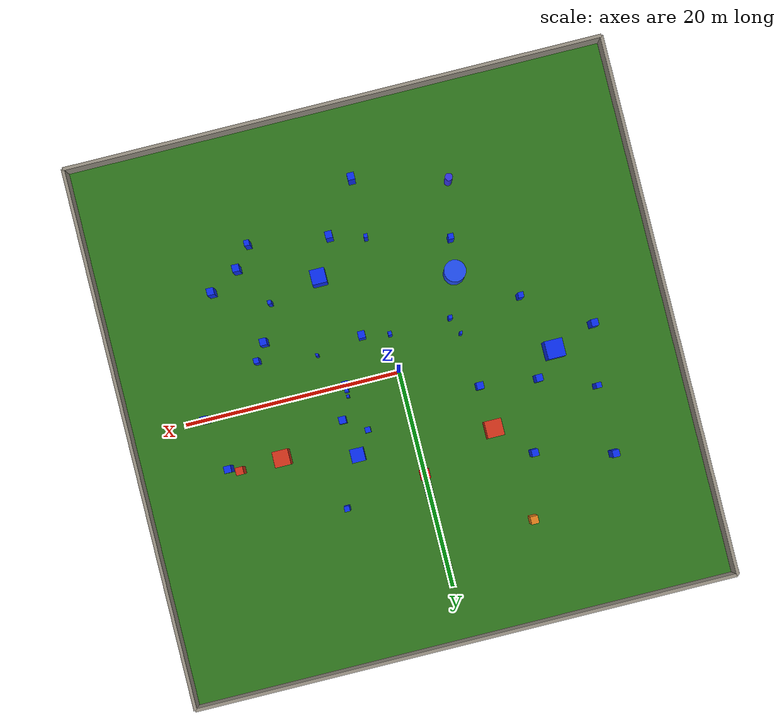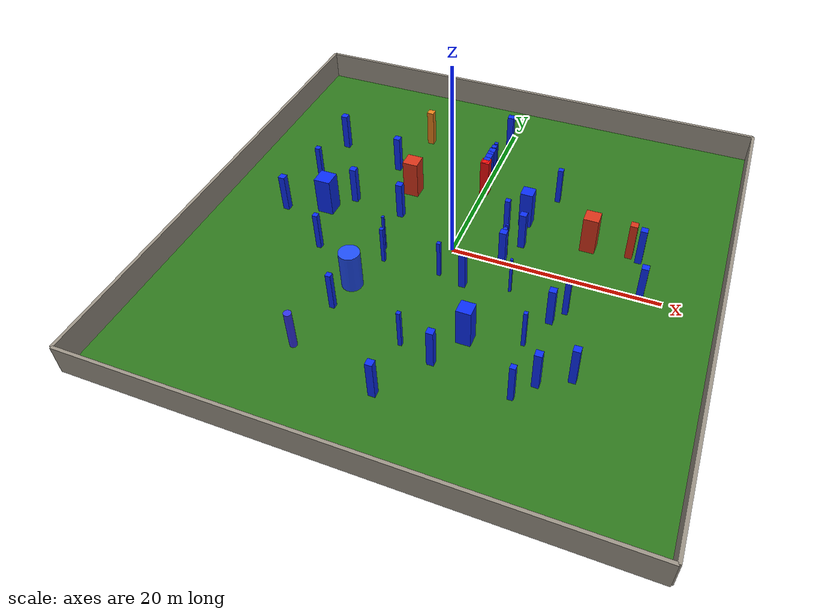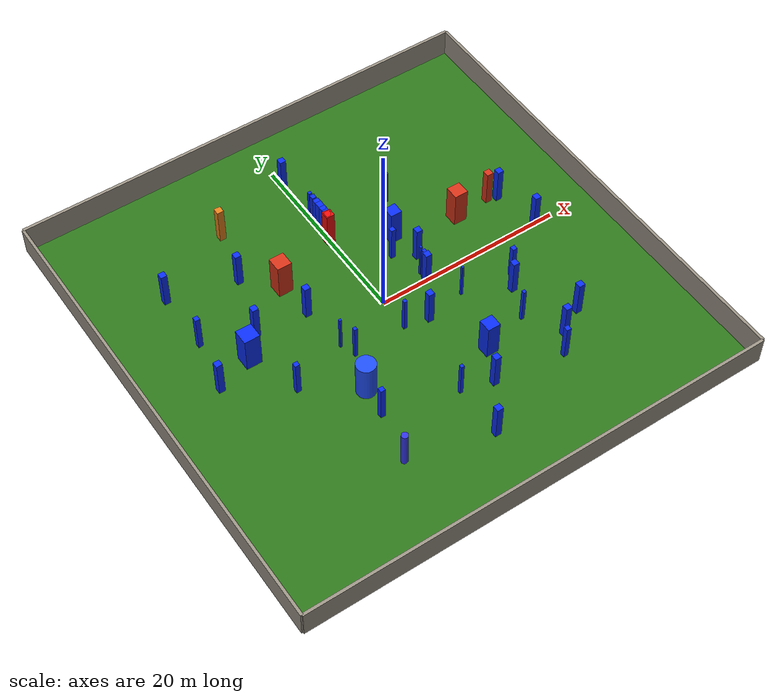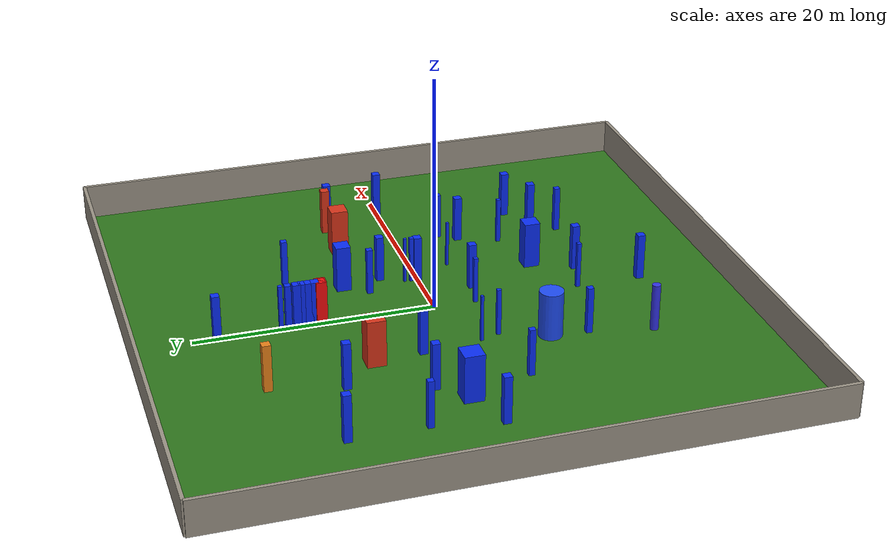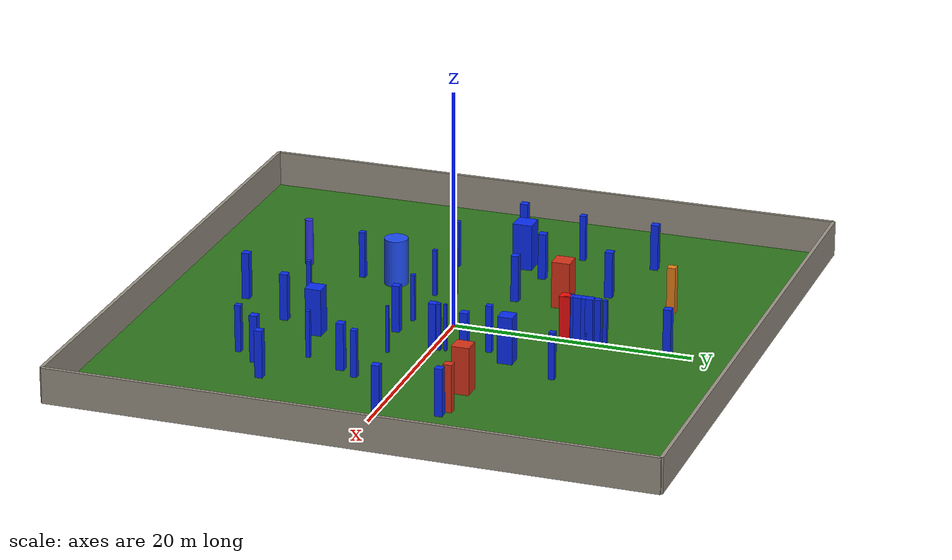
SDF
<?xml version='1.0' encoding='utf-8'?>
<sdf version="1.6">
  <world name="Mini_Airport_Clean">
    <plugin name="gazebo_ros_state" filename="libgazebo_ros_state.so">
      <ros>
        <namespace>/</namespace>
      </ros>
      <update_rate>20.0</update_rate>
    </plugin>
    <gravity>0 0 -9.8</gravity>
    <include>
      <uri>model://sun</uri>
    </include>
    <physics type="ode">
      <max_step_size>0.002</max_step_size>
      <real_time_factor>1.0</real_time_factor>
      <real_time_update_rate>500</real_time_update_rate>
    </physics>
    <scene>
      <ambient>0.65 0.65 0.65 1</ambient>
      <background>0.68 0.83 1.0 1</background>
      <shadows>false</shadows>
    </scene>
    <gui fullscreen="0">
      <camera name="user_camera">
        <pose>14 -18 11 0 0.55 2.35</pose>
        <view_controller>orbit</view_controller>
        <projection_type>perspective</projection_type>
      </camera>
    </gui>
    <model name="ground">
      <static>true</static>
      <pose>0 0 -0.05 0 0 0</pose>
      <link name="link">
        <collision name="collision">
          <geometry>
            <box>
              <size>50 50 0.01</size>
            </box>
          </geometry>
        </collision>
        <visual name="visual">
          <cast_shadows>false</cast_shadows>
          <geometry>
            <box>
              <size>50 50 0.01</size>
            </box>
          </geometry>
          <material>
            <ambient>0.14 0.38 0.09 1</ambient>
            <diffuse>0.18 0.46 0.11 1</diffuse>
            <specular>0.01 0.01 0.01 1</specular>
          </material>
        </visual>
      </link>
    </model>
    <model name="wall_north">
      <static>true</static>
      <pose>0 25 1.5 0 0 0</pose>
      <link name="link">
        <collision name="collision">
          <geometry>
            <box>
              <size>50 0.3 3</size>
            </box>
          </geometry>
        </collision>
        <visual name="visual">
          <cast_shadows>false</cast_shadows>
          <geometry>
            <box>
              <size>50 0.3 3</size>
            </box>
          </geometry>
          <material>
            <ambient>0.52 0.50 0.46 1</ambient>
            <diffuse>0.60 0.57 0.52 1</diffuse>
          </material>
        </visual>
      </link>
    </model>
    <model name="wall_south">
      <static>true</static>
      <pose>0 -25 1.5 0 0 0</pose>
      <link name="link">
        <collision name="collision">
          <geometry>
            <box>
              <size>50 0.3 3</size>
            </box>
          </geometry>
        </collision>
        <visual name="visual">
          <cast_shadows>false</cast_shadows>
          <geometry>
            <box>
              <size>50 0.3 3</size>
            </box>
          </geometry>
          <material>
            <ambient>0.52 0.50 0.46 1</ambient>
            <diffuse>0.60 0.57 0.52 1</diffuse>
          </material>
        </visual>
      </link>
    </model>
    <model name="wall_east">
      <static>true</static>
      <pose>25 0 1.5 0 0 0</pose>
      <link name="link">
        <collision name="collision">
          <geometry>
            <box>
              <size>0.3 50 3</size>
            </box>
          </geometry>
        </collision>
        <visual name="visual">
          <cast_shadows>false</cast_shadows>
          <geometry>
            <box>
              <size>0.3 50 3</size>
            </box>
          </geometry>
          <material>
            <ambient>0.52 0.50 0.46 1</ambient>
            <diffuse>0.60 0.57 0.52 1</diffuse>
          </material>
        </visual>
      </link>
    </model>
    <model name="wall_west">
      <static>true</static>
      <pose>-25 0 1.5 0 0 0</pose>
      <link name="link">
        <collision name="collision">
          <geometry>
            <box>
              <size>0.3 50 3</size>
            </box>
          </geometry>
        </collision>
        <visual name="visual">
          <cast_shadows>false</cast_shadows>
          <geometry>
            <box>
              <size>0.3 50 3</size>
            </box>
          </geometry>
          <material>
            <ambient>0.52 0.50 0.46 1</ambient>
            <diffuse>0.60 0.57 0.52 1</diffuse>
          </material>
        </visual>
      </link>
    </model>
    <model name="paper_env_drone_corridor_blue_square_01">
      <static>true</static>
      <pose>7.500 10.800 2.000 0 0 0</pose>
      <link name="link">
        <collision name="collision">
          <geometry>
            <box>
              <size>0.500 0.500 4.000</size>
            </box>
          </geometry>
        </collision>
        <visual name="visual">
          <cast_shadows>false</cast_shadows>
          <geometry>
            <box>
              <size>0.500 0.500 4.000</size>
            </box>
          </geometry>
          <material>
            <ambient>0.04 0.18 0.95 1.0</ambient>
            <diffuse>0.04 0.18 0.95 1.0</diffuse>
          </material>
        </visual>
      </link>
    </model>
    <model name="paper_env_drone_onroute_blue_square_01">
      <static>true</static>
      <pose>0.000 12.200 2.000 0 0 0</pose>
      <link name="link">
        <collision name="collision">
          <geometry>
            <box>
              <size>0.500 0.500 4.000</size>
            </box>
          </geometry>
        </collision>
        <visual name="visual">
          <cast_shadows>false</cast_shadows>
          <geometry>
            <box>
              <size>0.500 0.500 4.000</size>
            </box>
          </geometry>
          <material>
            <ambient>0.04 0.18 0.95 1.0</ambient>
            <diffuse>0.04 0.18 0.95 1.0</diffuse>
          </material>
        </visual>
      </link>
    </model>
    <model name="paper_env_drone_onroute_blue_square_02">
      <static>true</static>
      <pose>-16.991 5.521 2.000 0 0 0</pose>
      <link name="link">
        <collision name="collision">
          <geometry>
            <box>
              <size>0.500 0.500 4.000</size>
            </box>
          </geometry>
        </collision>
        <visual name="visual">
          <cast_shadows>false</cast_shadows>
          <geometry>
            <box>
              <size>0.500 0.500 4.000</size>
            </box>
          </geometry>
          <material>
            <ambient>0.04 0.18 0.95 1.0</ambient>
            <diffuse>0.04 0.18 0.95 1.0</diffuse>
          </material>
        </visual>
      </link>
    </model>
    <model name="paper_env_drone_corridor_blue_square_02">
      <static>true</static>
      <pose>-12.200 -4.000 2.000 0 0 0</pose>
      <link name="link">
        <collision name="collision">
          <geometry>
            <box>
              <size>0.500 0.500 4.000</size>
            </box>
          </geometry>
        </collision>
        <visual name="visual">
          <cast_shadows>false</cast_shadows>
          <geometry>
            <box>
              <size>0.500 0.500 4.000</size>
            </box>
          </geometry>
          <material>
            <ambient>0.04 0.18 0.95 1.0</ambient>
            <diffuse>0.04 0.18 0.95 1.0</diffuse>
          </material>
        </visual>
      </link>
    </model>
    <model name="paper_env_drone_onroute_blue_square_03">
      <static>true</static>
      <pose>-7.400 -10.600 2.000 0 0 0</pose>
      <link name="link">
        <collision name="collision">
          <geometry>
            <box>
              <size>0.500 0.500 4.000</size>
            </box>
          </geometry>
        </collision>
        <visual name="visual">
          <cast_shadows>false</cast_shadows>
          <geometry>
            <box>
              <size>0.500 0.500 4.000</size>
            </box>
          </geometry>
          <material>
            <ambient>0.04 0.18 0.95 1.0</ambient>
            <diffuse>0.04 0.18 0.95 1.0</diffuse>
          </material>
        </visual>
      </link>
    </model>
    <model name="paper_env_drone_onroute_blue_square_04">
      <static>true</static>
      <pose>10.501 -14.454 2.000 0 0 0</pose>
      <link name="link">
        <collision name="collision">
          <geometry>
            <box>
              <size>0.500 0.500 4.000</size>
            </box>
          </geometry>
        </collision>
        <visual name="visual">
          <cast_shadows>false</cast_shadows>
          <geometry>
            <box>
              <size>0.500 0.500 4.000</size>
            </box>
          </geometry>
          <material>
            <ambient>0.04 0.18 0.95 1.0</ambient>
            <diffuse>0.04 0.18 0.95 1.0</diffuse>
          </material>
        </visual>
      </link>
    </model>
    <model name="paper_env_drone_corridor_blue_square_03">
      <static>true</static>
      <pose>12.200 -4.000 2.000 0 0 0</pose>
      <link name="link">
        <collision name="collision">
          <geometry>
            <box>
              <size>0.500 0.500 4.000</size>
            </box>
          </geometry>
        </collision>
        <visual name="visual">
          <cast_shadows>false</cast_shadows>
          <geometry>
            <box>
              <size>0.500 0.500 4.000</size>
            </box>
          </geometry>
          <material>
            <ambient>0.04 0.18 0.95 1.0</ambient>
            <diffuse>0.04 0.18 0.95 1.0</diffuse>
          </material>
        </visual>
      </link>
    </model>
    <model name="paper_env_drone_corridor_blue_square_04">
      <static>true</static>
      <pose>4.000 4.400 2.000 0 0 0</pose>
      <link name="link">
        <collision name="collision">
          <geometry>
            <box>
              <size>0.500 0.500 4.000</size>
            </box>
          </geometry>
        </collision>
        <visual name="visual">
          <cast_shadows>false</cast_shadows>
          <geometry>
            <box>
              <size>0.500 0.500 4.000</size>
            </box>
          </geometry>
          <material>
            <ambient>0.04 0.18 0.95 1.0</ambient>
            <diffuse>0.04 0.18 0.95 1.0</diffuse>
          </material>
        </visual>
      </link>
    </model>
    <model name="paper_env_drone_path_box_wp01_wp02_h4m">
      <static>true</static>
      <pose>16.000 5.200 2.000 0 0 0</pose>
      <link name="link">
        <collision name="collision">
          <geometry>
            <box>
              <size>0.700 0.700 4.000</size>
            </box>
          </geometry>
        </collision>
        <visual name="visual">
          <cast_shadows>false</cast_shadows>
          <geometry>
            <box>
              <size>0.700 0.700 4.000</size>
            </box>
          </geometry>
          <material>
            <ambient>0.84 0.2 0.1 1</ambient>
            <diffuse>0.84 0.2 0.1 1</diffuse>
          </material>
        </visual>
      </link>
    </model>
    <model name="paper_env_drone_path_box_wp04_wp05_h2p8m">
      <static>true</static>
      <pose>-8.500 15.800 2.000 0 0 0</pose>
      <link name="link">
        <collision name="collision">
          <geometry>
            <box>
              <size>0.700 0.700 4.000</size>
            </box>
          </geometry>
        </collision>
        <visual name="visual">
          <cast_shadows>false</cast_shadows>
          <geometry>
            <box>
              <size>0.700 0.700 4.000</size>
            </box>
          </geometry>
          <material>
            <ambient>0.9 0.5 0.1 1</ambient>
            <diffuse>0.9 0.5 0.1 1</diffuse>
          </material>
        </visual>
      </link>
    </model>
    <model name="paper_env_drone_path_cylinder_wp07_wp08_h5m">
      <static>true</static>
      <pose>-8.500 -15.800 2.000 0 0 0</pose>
      <link name="link">
        <collision name="collision">
          <geometry>
            <cylinder>
              <radius>0.350</radius>
              <length>4.000</length>
            </cylinder>
          </geometry>
        </collision>
        <visual name="visual">
          <cast_shadows>false</cast_shadows>
          <geometry>
            <cylinder>
              <radius>0.350</radius>
              <length>4.000</length>
            </cylinder>
          </geometry>
          <material>
            <ambient>0.2 0.2 0.9 1</ambient>
            <diffuse>0.2 0.2 0.9 1</diffuse>
          </material>
        </visual>
      </link>
    </model>
    <model name="paper_env_drone_extra_box_01">
      <static>true</static>
      <pose>2.500 -4.000 2.000 0 0 0</pose>
      <link name="link">
        <collision name="collision">
          <geometry>
            <box>
              <size>0.650 0.650 4.000</size>
            </box>
          </geometry>
        </collision>
        <visual name="visual">
          <cast_shadows>false</cast_shadows>
          <geometry>
            <box>
              <size>0.650 0.650 4.000</size>
            </box>
          </geometry>
          <material>
            <ambient>0.04 0.18 0.95 1</ambient>
            <diffuse>0.04 0.18 0.95 1</diffuse>
          </material>
        </visual>
      </link>
    </model>
    <model name="paper_env_drone_extra_box_02">
      <static>true</static>
      <pose>0.000 18.000 2.000 0 0 0</pose>
      <link name="link">
        <collision name="collision">
          <geometry>
            <box>
              <size>0.650 0.650 4.000</size>
            </box>
          </geometry>
        </collision>
        <visual name="visual">
          <cast_shadows>false</cast_shadows>
          <geometry>
            <box>
              <size>0.650 0.650 4.000</size>
            </box>
          </geometry>
          <material>
            <ambient>0.04 0.18 0.95 1</ambient>
            <diffuse>0.04 0.18 0.95 1</diffuse>
          </material>
        </visual>
      </link>
    </model>
    <model name="paper_env_drone_extra_box_03">
      <static>true</static>
      <pose>0.000 -18.000 2.000 0 0 0</pose>
      <link name="link">
        <collision name="collision">
          <geometry>
            <box>
              <size>0.650 0.650 4.000</size>
            </box>
          </geometry>
        </collision>
        <visual name="visual">
          <cast_shadows>false</cast_shadows>
          <geometry>
            <box>
              <size>0.650 0.650 4.000</size>
            </box>
          </geometry>
          <material>
            <ambient>0.04 0.18 0.95 1</ambient>
            <diffuse>0.04 0.18 0.95 1</diffuse>
          </material>
        </visual>
      </link>
    </model>
    <model name="paper_env_drone_extra_box_04">
      <static>true</static>
      <pose>18.000 0.000 2.000 0 0 0</pose>
      <link name="link">
        <collision name="collision">
          <geometry>
            <box>
              <size>0.650 0.650 4.000</size>
            </box>
          </geometry>
        </collision>
        <visual name="visual">
          <cast_shadows>false</cast_shadows>
          <geometry>
            <box>
              <size>0.650 0.650 4.000</size>
            </box>
          </geometry>
          <material>
            <ambient>0.04 0.18 0.95 1</ambient>
            <diffuse>0.04 0.18 0.95 1</diffuse>
          </material>
        </visual>
      </link>
    </model>
    <model name="paper_env_drone_extra_box_05">
      <static>true</static>
      <pose>-18.000 0.000 2.000 0 0 0</pose>
      <link name="link">
        <collision name="collision">
          <geometry>
            <box>
              <size>0.650 0.650 4.000</size>
            </box>
          </geometry>
        </collision>
        <visual name="visual">
          <cast_shadows>false</cast_shadows>
          <geometry>
            <box>
              <size>0.650 0.650 4.000</size>
            </box>
          </geometry>
          <material>
            <ambient>0.04 0.18 0.95 1</ambient>
            <diffuse>0.04 0.18 0.95 1</diffuse>
          </material>
        </visual>
      </link>
    </model>
    <model name="box_1">
      <static>true</static>
      <pose>-6.700 3.000 2.000 0 0 0</pose>
      <link name="link">
        <collision name="collision">
          <geometry>
            <box>
              <size>0.650 0.650 4.000</size>
            </box>
          </geometry>
        </collision>
        <visual name="visual">
          <cast_shadows>false</cast_shadows>
          <geometry>
            <box>
              <size>0.650 0.650 4.000</size>
            </box>
          </geometry>
          <material>
            <ambient>0.04 0.18 0.95 1</ambient>
            <diffuse>0.04 0.18 0.95 1</diffuse>
          </material>
        </visual>
      </link>
    </model>
    <model name="box_2">
      <static>true</static>
      <pose>-12.000 3.600 2.000 0 0 0</pose>
      <link name="link">
        <collision name="collision">
          <geometry>
            <box>
              <size>0.650 0.650 4.000</size>
            </box>
          </geometry>
        </collision>
        <visual name="visual">
          <cast_shadows>false</cast_shadows>
          <geometry>
            <box>
              <size>0.650 0.650 4.000</size>
            </box>
          </geometry>
          <material>
            <ambient>0.04 0.18 0.95 1</ambient>
            <diffuse>0.04 0.18 0.95 1</diffuse>
          </material>
        </visual>
      </link>
    </model>
    <model name="box_3">
      <static>true</static>
      <pose>6.000 3.000 2.000 0 0 0</pose>
      <link name="link">
        <collision name="collision">
          <geometry>
            <box>
              <size>0.650 0.650 4.000</size>
            </box>
          </geometry>
        </collision>
        <visual name="visual">
          <cast_shadows>false</cast_shadows>
          <geometry>
            <box>
              <size>0.650 0.650 4.000</size>
            </box>
          </geometry>
          <material>
            <ambient>0.04 0.18 0.95 1</ambient>
            <diffuse>0.04 0.18 0.95 1</diffuse>
          </material>
        </visual>
      </link>
    </model>
    <model name="box_4">
      <static>true</static>
      <pose>11.200 -5.500 2.000 0 0 0</pose>
      <link name="link">
        <collision name="collision">
          <geometry>
            <box>
              <size>0.650 0.650 4.000</size>
            </box>
          </geometry>
        </collision>
        <visual name="visual">
          <cast_shadows>false</cast_shadows>
          <geometry>
            <box>
              <size>0.650 0.650 4.000</size>
            </box>
          </geometry>
          <material>
            <ambient>0.04 0.18 0.95 1</ambient>
            <diffuse>0.04 0.18 0.95 1</diffuse>
          </material>
        </visual>
      </link>
    </model>
    <model name="box_5">
      <static>true</static>
      <pose>17.000 4.800 2.000 0 0 0</pose>
      <link name="link">
        <collision name="collision">
          <geometry>
            <box>
              <size>0.650 0.650 4.000</size>
            </box>
          </geometry>
        </collision>
        <visual name="visual">
          <cast_shadows>false</cast_shadows>
          <geometry>
            <box>
              <size>0.650 0.650 4.000</size>
            </box>
          </geometry>
          <material>
            <ambient>0.04 0.18 0.95 1</ambient>
            <diffuse>0.04 0.18 0.95 1</diffuse>
          </material>
        </visual>
      </link>
    </model>
    <model name="box_6">
      <static>true</static>
      <pose>3.200 -13.400 2.000 0 0 0</pose>
      <link name="link">
        <collision name="collision">
          <geometry>
            <box>
              <size>0.650 0.650 4.000</size>
            </box>
          </geometry>
        </collision>
        <visual name="visual">
          <cast_shadows>false</cast_shadows>
          <geometry>
            <box>
              <size>0.650 0.650 4.000</size>
            </box>
          </geometry>
          <material>
            <ambient>0.04 0.18 0.95 1</ambient>
            <diffuse>0.04 0.18 0.95 1</diffuse>
          </material>
        </visual>
      </link>
    </model>
    <model name="box_7">
      <static>true</static>
      <pose>12.000 -12.500 2.000 0 0 0</pose>
      <link name="link">
        <collision name="collision">
          <geometry>
            <box>
              <size>0.650 0.650 4.000</size>
            </box>
          </geometry>
        </collision>
        <visual name="visual">
          <cast_shadows>false</cast_shadows>
          <geometry>
            <box>
              <size>0.650 0.650 4.000</size>
            </box>
          </geometry>
          <material>
            <ambient>0.04 0.18 0.95 1</ambient>
            <diffuse>0.04 0.18 0.95 1</diffuse>
          </material>
        </visual>
      </link>
    </model>
    <model name="box_8">
      <static>true</static>
      <pose>14.700 -11.000 2.000 0 0 0</pose>
      <link name="link">
        <collision name="collision">
          <geometry>
            <box>
              <size>0.650 0.650 4.000</size>
            </box>
          </geometry>
        </collision>
        <visual name="visual">
          <cast_shadows>false</cast_shadows>
          <geometry>
            <box>
              <size>0.650 0.650 4.000</size>
            </box>
          </geometry>
          <material>
            <ambient>0.04 0.18 0.95 1</ambient>
            <diffuse>0.04 0.18 0.95 1</diffuse>
          </material>
        </visual>
      </link>
    </model>
    <model name="box_9">
      <static>true</static>
      <pose>-17.000 11.800 2.000 0 0 0</pose>
      <link name="link">
        <collision name="collision">
          <geometry>
            <box>
              <size>0.650 0.650 4.000</size>
            </box>
          </geometry>
        </collision>
        <visual name="visual">
          <cast_shadows>false</cast_shadows>
          <geometry>
            <box>
              <size>0.650 0.650 4.000</size>
            </box>
          </geometry>
          <material>
            <ambient>0.04 0.18 0.95 1</ambient>
            <diffuse>0.04 0.18 0.95 1</diffuse>
          </material>
        </visual>
      </link>
    </model>
    <model name="box_10">
      <static>true</static>
      <pose>0.000 10.000 2.000 0 0 0</pose>
      <link name="link">
        <collision name="collision">
          <geometry>
            <box>
              <size>0.650 0.650 4.000</size>
            </box>
          </geometry>
        </collision>
        <visual name="visual">
          <cast_shadows>false</cast_shadows>
          <geometry>
            <box>
              <size>0.650 0.650 4.000</size>
            </box>
          </geometry>
          <material>
            <ambient>0.04 0.18 0.95 1</ambient>
            <diffuse>0.04 0.18 0.95 1</diffuse>
          </material>
        </visual>
      </link>
    </model>
    <model name="box_11">
      <static>true</static>
      <pose>0.000 11.000 2.000 0 0 0</pose>
      <link name="link">
        <collision name="collision">
          <geometry>
            <box>
              <size>0.650 0.650 4.000</size>
            </box>
          </geometry>
        </collision>
        <visual name="visual">
          <cast_shadows>false</cast_shadows>
          <geometry>
            <box>
              <size>0.650 0.650 4.000</size>
            </box>
          </geometry>
          <material>
            <ambient>0.04 0.18 0.95 1</ambient>
            <diffuse>0.04 0.18 0.95 1</diffuse>
          </material>
        </visual>
      </link>
    </model>
    <model name="paper_env_drone_static_wp03_wp04_center_block">
      <static>true</static>
      <pose>0.000 9.511 2.000 0 0 0</pose>
      <link name="link">
        <collision name="collision">
          <geometry>
            <box>
              <size>0.900 0.900 4.000</size>
            </box>
          </geometry>
        </collision>
        <visual name="visual">
          <cast_shadows>false</cast_shadows>
          <geometry>
            <box>
              <size>0.900 0.900 4.000</size>
            </box>
          </geometry>
          <material>
            <ambient>0.95 0.05 0.05 1.0</ambient>
            <diffuse>0.95 0.05 0.05 1.0</diffuse>
          </material>
        </visual>
      </link>
    </model>
    <model name="waver_copy_box31">
      <static>true</static>
      <pose>5.427 6.367 2.000 0 0 0</pose>
      <link name="link">
        <collision name="collision">
          <geometry>
            <box>
              <size>1.240 1.240 4.000</size>
            </box>
          </geometry>
        </collision>
        <visual name="visual">
          <cast_shadows>false</cast_shadows>
          <geometry>
            <box>
              <size>1.240 1.240 4.000</size>
            </box>
          </geometry>
          <material>
            <ambient>0.04 0.18 0.95 1.0</ambient>
            <diffuse>0.04 0.18 0.95 1.0</diffuse>
          </material>
        </visual>
      </link>
    </model>
    <model name="waver_copy_box32">
      <static>true</static>
      <pose>-6.192 -2.012 2.000 0 0 0</pose>
      <link name="link">
        <collision name="collision">
          <geometry>
            <box>
              <size>0.240 0.240 4.000</size>
            </box>
          </geometry>
        </collision>
        <visual name="visual">
          <cast_shadows>false</cast_shadows>
          <geometry>
            <box>
              <size>0.240 0.240 4.000</size>
            </box>
          </geometry>
          <material>
            <ambient>0.04 0.18 0.95 1.0</ambient>
            <diffuse>0.04 0.18 0.95 1.0</diffuse>
          </material>
        </visual>
      </link>
    </model>
    <model name="waver_copy_box33">
      <static>true</static>
      <pose>6.800 -3.200 2.000 0 0 0</pose>
      <link name="link">
        <collision name="collision">
          <geometry>
            <box>
              <size>0.240 0.240 4.000</size>
            </box>
          </geometry>
        </collision>
        <visual name="visual">
          <cast_shadows>false</cast_shadows>
          <geometry>
            <box>
              <size>0.240 0.240 4.000</size>
            </box>
          </geometry>
          <material>
            <ambient>0.04 0.18 0.95 1.0</ambient>
            <diffuse>0.04 0.18 0.95 1.0</diffuse>
          </material>
        </visual>
      </link>
    </model>
    <model name="waver_copy_box34">
      <static>true</static>
      <pose>5.011 1.055 2.000 0 0 0</pose>
      <link name="link">
        <collision name="collision">
          <geometry>
            <box>
              <size>0.240 0.240 4.000</size>
            </box>
          </geometry>
        </collision>
        <visual name="visual">
          <cast_shadows>false</cast_shadows>
          <geometry>
            <box>
              <size>0.240 0.240 4.000</size>
            </box>
          </geometry>
          <material>
            <ambient>0.04 0.18 0.95 1.0</ambient>
            <diffuse>0.04 0.18 0.95 1.0</diffuse>
          </material>
        </visual>
      </link>
    </model>
    <model name="waver_copy_box35">
      <static>true</static>
      <pose>12.100 5.000 2.000 0 0 0</pose>
      <link name="link">
        <collision name="collision">
          <geometry>
            <box>
              <size>1.450 1.450 4.000</size>
            </box>
          </geometry>
        </collision>
        <visual name="visual">
          <cast_shadows>false</cast_shadows>
          <geometry>
            <box>
              <size>1.450 1.450 4.000</size>
            </box>
          </geometry>
          <material>
            <ambient>0.84 0.2 0.1 1</ambient>
            <diffuse>0.84 0.2 0.1 1</diffuse>
          </material>
        </visual>
      </link>
    </model>
    <model name="waver_copy_box36">
      <static>true</static>
      <pose>-7.000 7.000 2.000 0 0 0</pose>
      <link name="link">
        <collision name="collision">
          <geometry>
            <box>
              <size>1.550 1.550 4.000</size>
            </box>
          </geometry>
        </collision>
        <visual name="visual">
          <cast_shadows>false</cast_shadows>
          <geometry>
            <box>
              <size>1.550 1.550 4.000</size>
            </box>
          </geometry>
          <material>
            <ambient>0.84 0.2 0.1 1</ambient>
            <diffuse>0.84 0.2 0.1 1</diffuse>
          </material>
        </visual>
      </link>
    </model>
    <model name="waver_copy_box37">
      <static>true</static>
      <pose>-7.000 -7.500 2.000 0 0 0</pose>
      <link name="link">
        <collision name="collision">
          <geometry>
            <cylinder>
              <radius>1.000</radius>
              <length>4.000</length>
            </cylinder>
          </geometry>
        </collision>
        <visual name="visual">
          <cast_shadows>false</cast_shadows>
          <geometry>
            <cylinder>
              <radius>1.000</radius>
              <length>4.000</length>
            </cylinder>
          </geometry>
          <material>
            <ambient>0.12 0.3 0.95 1</ambient>
            <diffuse>0.12 0.3 0.95 1</diffuse>
          </material>
        </visual>
      </link>
    </model>
    <model name="waver_copy_box38">
      <static>true</static>
      <pose>0.000 -12.500 2.000 0 0 0</pose>
      <link name="link">
        <collision name="collision">
          <geometry>
            <box>
              <size>0.350 0.350 4.000</size>
            </box>
          </geometry>
        </collision>
        <visual name="visual">
          <cast_shadows>false</cast_shadows>
          <geometry>
            <box>
              <size>0.350 0.350 4.000</size>
            </box>
          </geometry>
          <material>
            <ambient>0.04 0.18 0.95 1</ambient>
            <diffuse>0.04 0.18 0.95 1</diffuse>
          </material>
        </visual>
      </link>
    </model>
    <model name="waver_copy_box39">
      <static>true</static>
      <pose>5.000 -10.000 2.000 0 0 0</pose>
      <link name="link">
        <collision name="collision">
          <geometry>
            <box>
              <size>1.350 1.350 4.000</size>
            </box>
          </geometry>
        </collision>
        <visual name="visual">
          <cast_shadows>false</cast_shadows>
          <geometry>
            <box>
              <size>1.350 1.350 4.000</size>
            </box>
          </geometry>
          <material>
            <ambient>0.04 0.18 0.95 1</ambient>
            <diffuse>0.04 0.18 0.95 1</diffuse>
          </material>
        </visual>
      </link>
    </model>
    <model name="waver_copy_box_1">
      <static>true</static>
      <pose>5.000 0.500 2.000 0 0 0</pose>
      <link name="link">
        <collision name="collision">
          <geometry>
            <box>
              <size>0.350 0.350 4.000</size>
            </box>
          </geometry>
        </collision>
        <visual name="visual">
          <cast_shadows>false</cast_shadows>
          <geometry>
            <box>
              <size>0.350 0.350 4.000</size>
            </box>
          </geometry>
          <material>
            <ambient>0.04 0.18 0.95 1</ambient>
            <diffuse>0.04 0.18 0.95 1</diffuse>
          </material>
        </visual>
      </link>
    </model>
    <model name="waver_copy_box_2">
      <static>true</static>
      <pose>0.000 -3.500 2.000 0 0 0</pose>
      <link name="link">
        <collision name="collision">
          <geometry>
            <box>
              <size>0.350 0.350 4.000</size>
            </box>
          </geometry>
        </collision>
        <visual name="visual">
          <cast_shadows>false</cast_shadows>
          <geometry>
            <box>
              <size>0.350 0.350 4.000</size>
            </box>
          </geometry>
          <material>
            <ambient>0.04 0.18 0.95 1</ambient>
            <diffuse>0.04 0.18 0.95 1</diffuse>
          </material>
        </visual>
      </link>
    </model>
    <model name="waver_copy_box_3">
      <static>true</static>
      <pose>-5.600 -3.600 2.000 0 0 0</pose>
      <link name="link">
        <collision name="collision">
          <geometry>
            <box>
              <size>0.350 0.350 4.000</size>
            </box>
          </geometry>
        </collision>
        <visual name="visual">
          <cast_shadows>false</cast_shadows>
          <geometry>
            <box>
              <size>0.350 0.350 4.000</size>
            </box>
          </geometry>
          <material>
            <ambient>0.04 0.18 0.95 1</ambient>
            <diffuse>0.04 0.18 0.95 1</diffuse>
          </material>
        </visual>
      </link>
    </model>
    <model name="waver_copy_box_4">
      <static>true</static>
      <pose>9.800 -8.800 2.000 0 0 0</pose>
      <link name="link">
        <collision name="collision">
          <geometry>
            <box>
              <size>0.350 0.350 4.000</size>
            </box>
          </geometry>
        </collision>
        <visual name="visual">
          <cast_shadows>false</cast_shadows>
          <geometry>
            <box>
              <size>0.350 0.350 4.000</size>
            </box>
          </geometry>
          <material>
            <ambient>0.04 0.18 0.95 1</ambient>
            <diffuse>0.04 0.18 0.95 1</diffuse>
          </material>
        </visual>
      </link>
    </model>
    <model name="waver_copy_box_5">
      <static>true</static>
      <pose>0.000 12.800 2.000 0 0 0</pose>
      <link name="link">
        <collision name="collision">
          <geometry>
            <box>
              <size>0.350 0.350 4.000</size>
            </box>
          </geometry>
        </collision>
        <visual name="visual">
          <cast_shadows>false</cast_shadows>
          <geometry>
            <box>
              <size>0.350 0.350 4.000</size>
            </box>
          </geometry>
          <material>
            <ambient>0.04 0.18 0.95 1</ambient>
            <diffuse>0.04 0.18 0.95 1</diffuse>
          </material>
        </visual>
      </link>
    </model>
    <model name="waver_copy_box_6">
      <static>true</static>
      <pose>-14.000 1.400 2.000 0 0 0</pose>
      <link name="link">
        <collision name="collision">
          <geometry>
            <box>
              <size>1.650 1.650 4.000</size>
            </box>
          </geometry>
        </collision>
        <visual name="visual">
          <cast_shadows>false</cast_shadows>
          <geometry>
            <box>
              <size>1.650 1.650 4.000</size>
            </box>
          </geometry>
          <material>
            <ambient>0.04 0.18 0.95 1</ambient>
            <diffuse>0.04 0.18 0.95 1</diffuse>
          </material>
        </visual>
      </link>
    </model>
    <model name="waver_copy_box_10">
      <static>true</static>
      <pose>0.000 10.500 2.000 0 0 0</pose>
      <link name="link">
        <collision name="collision">
          <geometry>
            <box>
              <size>0.650 0.650 4.000</size>
            </box>
          </geometry>
        </collision>
        <visual name="visual">
          <cast_shadows>false</cast_shadows>
          <geometry>
            <box>
              <size>0.650 0.650 4.000</size>
            </box>
          </geometry>
          <material>
            <ambient>0.04 0.18 0.95 1</ambient>
            <diffuse>0.04 0.18 0.95 1</diffuse>
          </material>
        </visual>
      </link>
    </model>
    <model name="waver_copy_box_11">
      <static>true</static>
      <pose>0.000 11.500 2.000 0 0 0</pose>
      <link name="link">
        <collision name="collision">
          <geometry>
            <box>
              <size>0.650 0.650 4.000</size>
            </box>
          </geometry>
        </collision>
        <visual name="visual">
          <cast_shadows>false</cast_shadows>
          <geometry>
            <box>
              <size>0.650 0.650 4.000</size>
            </box>
          </geometry>
          <material>
            <ambient>0.04 0.18 0.95 1</ambient>
            <diffuse>0.04 0.18 0.95 1</diffuse>
          </material>
        </visual>
      </link>
    </model>
    <model name="waver_copy_box_12">
      <static>true</static>
      <pose>5.000 0.000 2.000 0 0 0</pose>
      <link name="link">
        <collision name="collision">
          <geometry>
            <box>
              <size>0.650 0.650 4.000</size>
            </box>
          </geometry>
        </collision>
        <visual name="visual">
          <cast_shadows>false</cast_shadows>
          <geometry>
            <box>
              <size>0.650 0.650 4.000</size>
            </box>
          </geometry>
          <material>
            <ambient>0.04 0.18 0.95 1</ambient>
            <diffuse>0.04 0.18 0.95 1</diffuse>
          </material>
        </visual>
      </link>
    </model>
    <model name="waver_copy_box_13">
      <static>true</static>
      <pose>-10.000 10.000 2.000 0 0 0</pose>
      <link name="link">
        <collision name="collision">
          <geometry>
            <box>
              <size>0.650 0.650 4.000</size>
            </box>
          </geometry>
        </collision>
        <visual name="visual">
          <cast_shadows>false</cast_shadows>
          <geometry>
            <box>
              <size>0.650 0.650 4.000</size>
            </box>
          </geometry>
          <material>
            <ambient>0.04 0.18 0.95 1</ambient>
            <diffuse>0.04 0.18 0.95 1</diffuse>
          </material>
        </visual>
      </link>
    </model>
    <model name="waver_copy_paper_env_waver_static_wp03_wp04_center_block">
      <static>true</static>
      <pose>0.000 9.511 2.000 0 0 0</pose>
      <link name="link">
        <collision name="collision">
          <geometry>
            <box>
              <size>0.700 0.700 4.000</size>
            </box>
          </geometry>
        </collision>
        <visual name="visual">
          <cast_shadows>false</cast_shadows>
          <geometry>
            <box>
              <size>0.700 0.700 4.000</size>
            </box>
          </geometry>
          <material>
            <ambient>0.95 0.05 0.05 1.0</ambient>
            <diffuse>0.95 0.05 0.05 1.0</diffuse>
          </material>
        </visual>
      </link>
    </model>
  </world>
</sdf>
